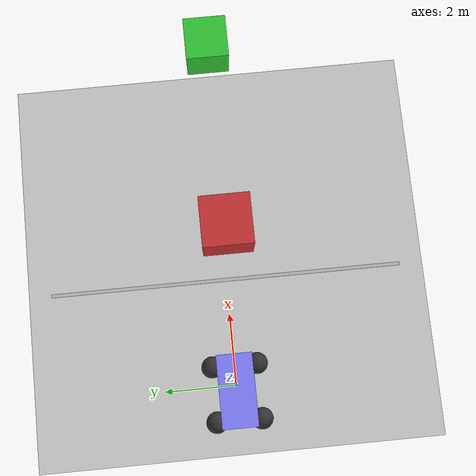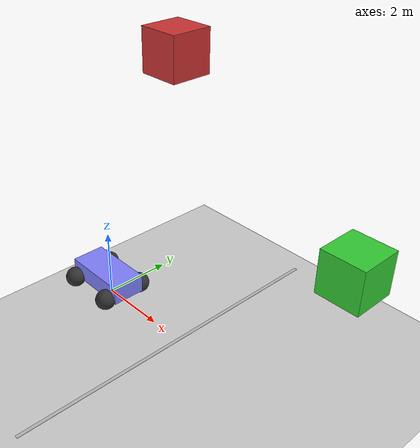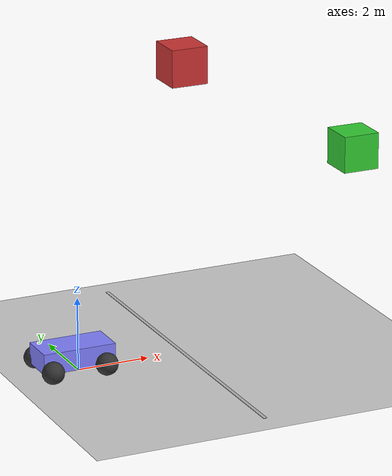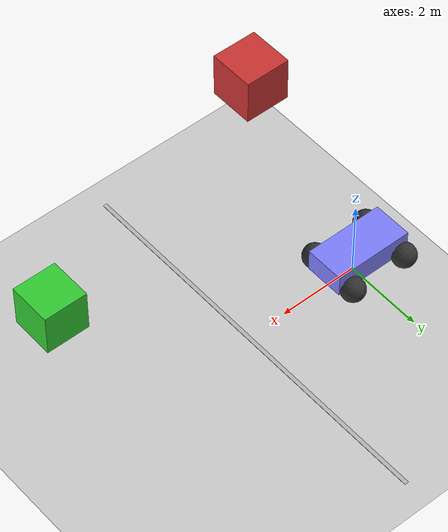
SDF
<?xml version="1.0" ?>
<sdf version="1.6">
  <world name="triggered_publisher">
    <plugin
      filename="gz-sim-apply-link-wrench-system"
      name="gz::sim::systems::ApplyLinkWrench">
    </plugin>

    <physics name="1ms" type="ignored">
      <max_step_size>0.001</max_step_size>
      <real_time_factor>1.0</real_time_factor>
    </physics>
    <plugin
      filename="gz-sim-physics-system"
      name="gz::sim::systems::Physics">
    </plugin>
    <plugin
      filename="gz-sim-contact-system"
      name="gz::sim::systems::Contact">
    </plugin>
    <plugin
      filename="gz-sim-user-commands-system"
      name="gz::sim::systems::UserCommands">
    </plugin>
    <plugin
      filename="gz-sim-scene-broadcaster-system"
      name="gz::sim::systems::SceneBroadcaster">
    </plugin>
    <plugin
      filename="gz-sim-altimeter-system"
      name="gz::sim::systems::Altimeter">
    </plugin>

    <light type="directional" name="sun">
      <cast_shadows>true</cast_shadows>
      <pose>0 0 10 0 0 0</pose>
      <diffuse>1 1 1 1</diffuse>
      <specular>0.5 0.5 0.5 1</specular>
      <attenuation>
        <range>1000</range>
        <constant>0.9</constant>
        <linear>0.01</linear>
        <quadratic>0.001</quadratic>
      </attenuation>
      <direction>0.05 -0.1 -0.9</direction>
    </light>

    <model name="ground_plane">
      <static>true</static>
      <link name="link">
        <collision name="collision">
          <geometry>
            <plane>
              <normal>0 0 1</normal>
              <size>100 100</size>
            </plane>
          </geometry>
        </collision>
        <visual name="visual">
          <geometry>
            <plane>
              <normal>0 0 1</normal>
              <size>100 100</size>
            </plane>
          </geometry>
          <material>
            <ambient>0.8 0.8 0.8 1</ambient>
            <diffuse>0.8 0.8 0.8 1</diffuse>
            <specular>0.8 0.8 0.8 1</specular>
          </material>
        </visual>
      </link>
    </model>

    <model name='vehicle_blue'>
      <pose>0 0 0.325 0 -0 0</pose>

      <link name='chassis'>
        <pose>-0.151427 -0 0.175 0 -0 0</pose>
        <inertial>
          <mass>1.14395</mass>
          <inertia>
            <ixx>0.126164</ixx>
            <ixy>0</ixy>
            <ixz>0</ixz>
            <iyy>0.416519</iyy>
            <iyz>0</iyz>
            <izz>0.481014</izz>
          </inertia>
        </inertial>
        <visual name='visual'>
          <geometry>
            <box>
              <size>2.01142 1 0.568726</size>
            </box>
          </geometry>
          <material>
            <ambient>0.5 0.5 1.0 1</ambient>
            <diffuse>0.5 0.5 1.0 1</diffuse>
            <specular>0.0 0.0 1.0 1</specular>
          </material>
        </visual>
        <collision name='collision'>
          <geometry>
            <box>
              <size>2.01142 1 0.568726</size>
            </box>
          </geometry>
        </collision>
      </link>

      <link name='front_left_wheel'>
        <pose>0.554283 0.625029 -0.025 -1.5707 0 0</pose>
        <inertial>
          <mass>2</mass>
          <inertia>
            <ixx>0.145833</ixx>
            <ixy>0</ixy>
            <ixz>0</ixz>
            <iyy>0.145833</iyy>
            <iyz>0</iyz>
            <izz>0.125</izz>
          </inertia>
        </inertial>
        <visual name='visual'>
          <geometry>
            <sphere>
              <radius>0.3</radius>
            </sphere>
          </geometry>
          <material>
            <ambient>0.2 0.2 0.2 1</ambient>
            <diffuse>0.2 0.2 0.2 1</diffuse>
            <specular>0.2 0.2 0.2 1</specular>
          </material>
        </visual>
        <collision name='collision'>
          <geometry>
            <sphere>
              <radius>0.3</radius>
            </sphere>
          </geometry>
          <surface>
            <friction>
              <ode>
                <mu>1</mu>
                <mu2>1</mu2>
                <slip1>0.035</slip1>
                <slip2>0</slip2>
                <fdir1>0 0 1</fdir1>
              </ode>
              <bullet>
                <friction>1</friction>
                <friction2>1</friction2>
                <rolling_friction>0.1</rolling_friction>
              </bullet>
            </friction>
          </surface>
        </collision>
      </link>

      <link name='rear_left_wheel'>
        <pose>-0.957138 0.625029 -0.025 -1.5707 0 0</pose>
        <inertial>
          <mass>2</mass>
          <inertia>
            <ixx>0.145833</ixx>
            <ixy>0</ixy>
            <ixz>0</ixz>
            <iyy>0.145833</iyy>
            <iyz>0</iyz>
            <izz>0.125</izz>
          </inertia>
        </inertial>
        <visual name='visual'>
          <geometry>
            <sphere>
              <radius>0.3</radius>
            </sphere>
          </geometry>
          <material>
            <ambient>0.2 0.2 0.2 1</ambient>
            <diffuse>0.2 0.2 0.2 1</diffuse>
            <specular>0.2 0.2 0.2 1</specular>
          </material>
        </visual>
        <collision name='collision'>
          <geometry>
            <sphere>
              <radius>0.3</radius>
            </sphere>
          </geometry>
          <surface>
            <friction>
              <ode>
                <mu>1</mu>
                <mu2>1</mu2>
                <slip1>0.035</slip1>
                <slip2>0</slip2>
                <fdir1>0 0 1</fdir1>
              </ode>
              <bullet>
                <friction>1</friction>
                <friction2>1</friction2>
                <rolling_friction>0.1</rolling_friction>
              </bullet>
            </friction>
          </surface>
        </collision>
      </link>

      <link name='front_right_wheel'>
        <pose>0.554282 -0.625029 -0.025 -1.5707 0 0</pose>
        <inertial>
          <mass>2</mass>
          <inertia>
            <ixx>0.145833</ixx>
            <ixy>0</ixy>
            <ixz>0</ixz>
            <iyy>0.145833</iyy>
            <iyz>0</iyz>
            <izz>0.125</izz>
          </inertia>
        </inertial>
        <visual name='visual'>
          <geometry>
            <sphere>
              <radius>0.3</radius>
            </sphere>
          </geometry>
          <material>
            <ambient>0.2 0.2 0.2 1</ambient>
            <diffuse>0.2 0.2 0.2 1</diffuse>
            <specular>0.2 0.2 0.2 1</specular>
          </material>
        </visual>
        <collision name='collision'>
          <geometry>
            <sphere>
              <radius>0.3</radius>
            </sphere>
          </geometry>
          <surface>
            <friction>
              <ode>
                <mu>1</mu>
                <mu2>1</mu2>
                <slip1>0.035</slip1>
                <slip2>0</slip2>
                <fdir1>0 0 1</fdir1>
              </ode>
              <bullet>
                <friction>1</friction>
                <friction2>1</friction2>
                <rolling_friction>0.1</rolling_friction>
              </bullet>
            </friction>
          </surface>
        </collision>
      </link>

      <link name='rear_right_wheel'>
        <pose>-0.957138 -0.625029 -0.025 -1.5707 0 0</pose>
        <inertial>
          <mass>2</mass>
          <inertia>
            <ixx>0.145833</ixx>
            <ixy>0</ixy>
            <ixz>0</ixz>
            <iyy>0.145833</iyy>
            <iyz>0</iyz>
            <izz>0.125</izz>
          </inertia>
        </inertial>
        <visual name='visual'>
          <geometry>
            <sphere>
              <radius>0.3</radius>
            </sphere>
          </geometry>
          <material>
            <ambient>0.2 0.2 0.2 1</ambient>
            <diffuse>0.2 0.2 0.2 1</diffuse>
            <specular>0.2 0.2 0.2 1</specular>
          </material>
        </visual>
        <collision name='collision'>
          <geometry>
            <sphere>
              <radius>0.3</radius>
            </sphere>
          </geometry>
          <surface>
            <friction>
              <ode>
                <mu>1</mu>
                <mu2>1</mu2>
                <slip1>0.035</slip1>
                <slip2>0</slip2>
                <fdir1>0 0 1</fdir1>
              </ode>
              <bullet>
                <friction>1</friction>
                <friction2>1</friction2>
                <rolling_friction>0.1</rolling_friction>
              </bullet>
            </friction>
          </surface>
        </collision>
      </link>

      <joint name='front_left_wheel_joint' type='revolute'>
        <parent>chassis</parent>
        <child>front_left_wheel</child>
        <axis>
          <xyz>0 0 1</xyz>
          <limit>
            <lower>-1.79769e+308</lower>
            <upper>1.79769e+308</upper>
          </limit>
        </axis>
      </joint>

      <joint name='front_right_wheel_joint' type='revolute'>
        <parent>chassis</parent>
        <child>front_right_wheel</child>
        <axis>
          <xyz>0 0 1</xyz>
          <limit>
            <lower>-1.79769e+308</lower>
            <upper>1.79769e+308</upper>
          </limit>
        </axis>
      </joint>

      <joint name='rear_left_wheel_joint' type='revolute'>
        <parent>chassis</parent>
        <child>rear_left_wheel</child>
        <axis>
          <xyz>0 0 1</xyz>
          <limit>
            <lower>-1.79769e+308</lower>
            <upper>1.79769e+308</upper>
          </limit>
        </axis>
      </joint>

      <joint name='rear_right_wheel_joint' type='revolute'>
        <parent>chassis</parent>
        <child>rear_right_wheel</child>
        <axis>
          <xyz>0 0 1</xyz>
          <limit>
            <lower>-1.79769e+308</lower>
            <upper>1.79769e+308</upper>
          </limit>
        </axis>
      </joint>

      <plugin
        filename="gz-sim-diff-drive-system"
        name="gz::sim::systems::DiffDrive">
        <left_joint>front_left_wheel_joint</left_joint>
        <left_joint>rear_left_wheel_joint</left_joint>
        <right_joint>front_right_wheel_joint</right_joint>
        <right_joint>rear_right_wheel_joint</right_joint>
        <wheel_separation>1.25</wheel_separation>
        <wheel_radius>0.3</wheel_radius>
        <topic>cmd_vel</topic>
      </plugin>
    </model>

    <model name="trigger">
      <pose>3 0 0 0 0 0</pose>
      <static>true</static>
      <link name="body">
        <visual name="v1">
          <geometry>
            <box><size>0.1 10 0.01</size></box>
          </geometry>
        </visual>
        <collision name="c1">
          <geometry>
            <box><size>0.1 10 0.01</size></box>
          </geometry>
        </collision>
        <sensor name='sensor_contact' type='contact'>
          <contact>
            <collision>c1</collision>
          </contact>
        </sensor>
      </link>
      <plugin
        filename="gz-sim-touchplugin-system"
        name="gz::sim::systems::TouchPlugin">
        <target>vehicle_blue</target>
        <namespace>trigger</namespace>
        <time>0.001</time>
        <enabled>true</enabled>
      </plugin>
      <plugin filename="gz-sim-detachable-joint-system" name="gz::sim::systems::DetachableJoint">
        <parent_link>body</parent_link>
        <child_model>box1</child_model>
        <child_link>box_body</child_link>
        <detach_topic>/box1/detach</detach_topic>
      </plugin>
      <plugin filename="gz-sim-detachable-joint-system" name="gz::sim::systems::DetachableJoint">
        <parent_link>body</parent_link>
        <child_model>box2</child_model>
        <child_link>box_body</child_link>
        <detach_topic>/box2/detach</detach_topic>
      </plugin>
    </model>

    <model name="box1">
      <pose>3 0 8 0 0 0</pose>
      <link name="box_body">
        <visual name="v1">
          <geometry>
            <box><size>1 1 1</size></box>
          </geometry>
          <material>
            <diffuse>0.8 0.2 0.2 1</diffuse>
            <specular>1.0 0 0 1</specular>
          </material>
        </visual>
        <collision name="c1">
          <geometry>
            <box><size>1 1 1</size></box>
          </geometry>
        </collision>

        <sensor name="altimeter_sensor" type="altimeter">
          <topic>/altimeter</topic>
          <always_on>1</always_on>
          <update_rate>30</update_rate>
          <visualize>true</visualize>
        </sensor>
      </link>
    </model>

    <model name="box2">
      <pose>8 0 5 0 0 0</pose>
      <link name="box_body">
        <visual name="v1">
          <geometry>
            <box><size>1 1 1</size></box>
          </geometry>
          <material>
            <diffuse>0.2 0.8 0.2 1</diffuse>
            <specular>1.0 0 0 1</specular>
          </material>
        </visual>
        <collision name="c1">
          <geometry>
            <box><size>1 1 1</size></box>
          </geometry>
        </collision>
      </link>
    </model>

    <plugin filename="gz-sim-triggered-publisher-system" name="gz::sim::systems::TriggeredPublisher">
      <input type="gz.msgs.Empty" topic="/start"/>
      <output type="gz.msgs.Twist" topic="/cmd_vel">
          linear: {x: 3}
      </output>
    </plugin>
    <plugin
      filename="gz-sim-triggered-publisher-system"
      name="gz::sim::systems::TriggeredPublisher">
      <input type="gz.msgs.Empty" topic="/reset_robot"/>
      <output type="gz.msgs.Twist" topic="/cmd_vel">
          linear: {x: 0}
      </output>
      <service
        name="/world/triggered_publisher/set_pose"
        reqType="gz.msgs.Pose"
        repType="gz.msgs.Boolean"
        timeout="3000"
        reqMsg="name: 'vehicle_blue', position: {x: -3, z: 0.325}">
      </service>
    </plugin>
    <plugin
      filename="gz-sim-triggered-publisher-system"
      name="gz::sim::systems::TriggeredPublisher">
      <input type="gz.msgs.Boolean" topic="/trigger/touched">
        <match>data: true</match>
      </input>
      <output type="gz.msgs.Empty" topic="/box1/detach"/>
    </plugin>
    <plugin filename="gz-sim-triggered-publisher-system" name="gz::sim::systems::TriggeredPublisher">
      <input type="gz.msgs.Altimeter" topic="/altimeter">
        <match field="vertical_position" tol="0.2">-7.5</match>
      </input>
      <delay_ms>5000</delay_ms>
      <output type="gz.msgs.Empty" topic="/box2/detach"/>
    </plugin>
</world>
</sdf>
